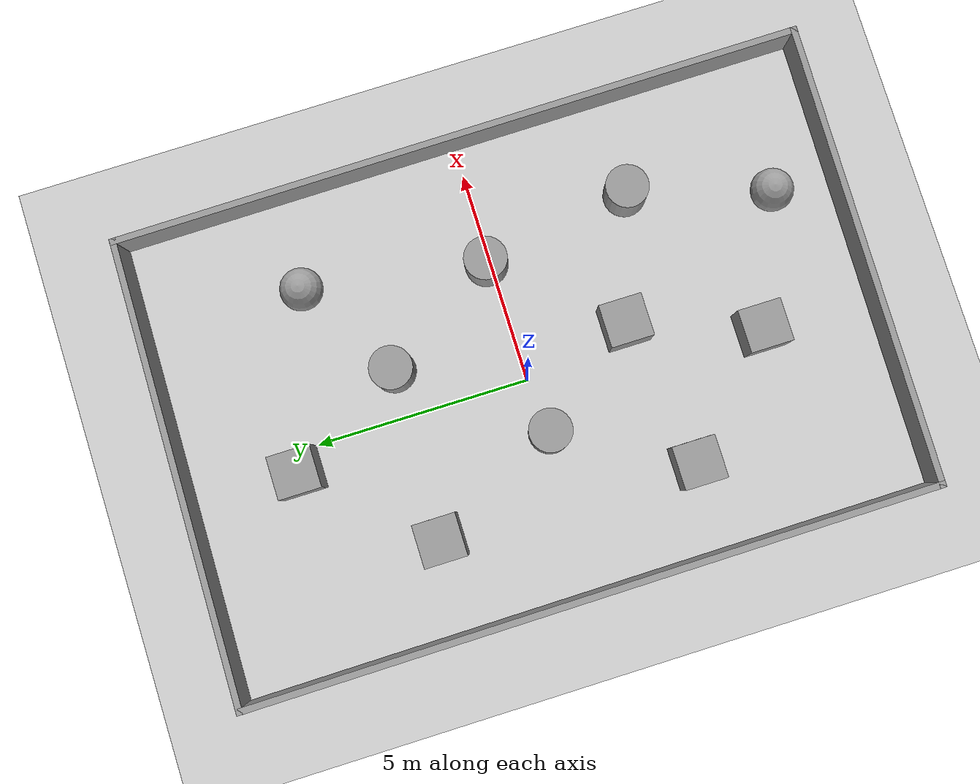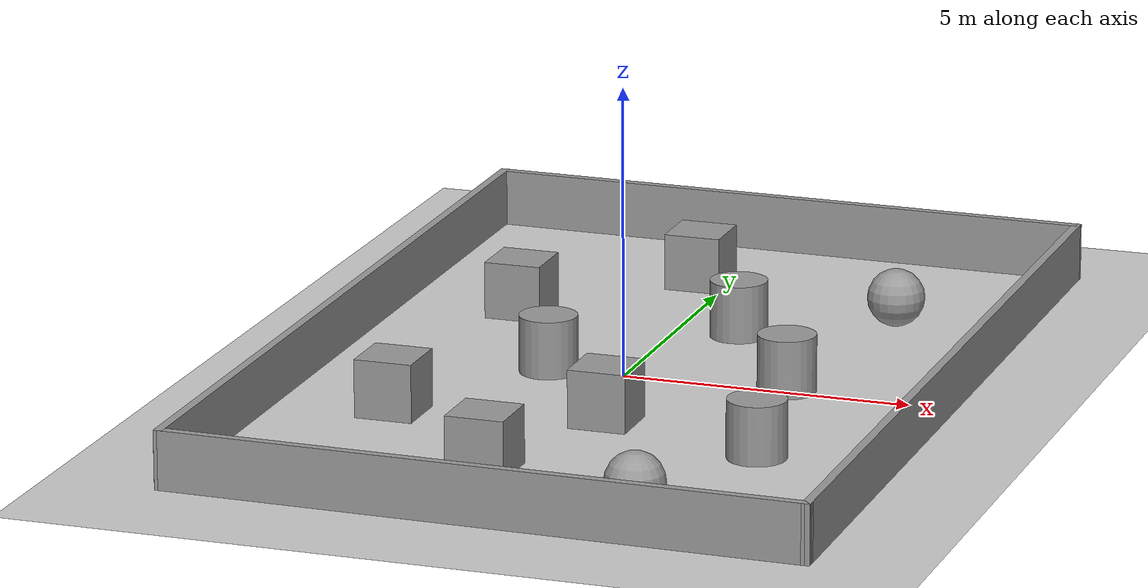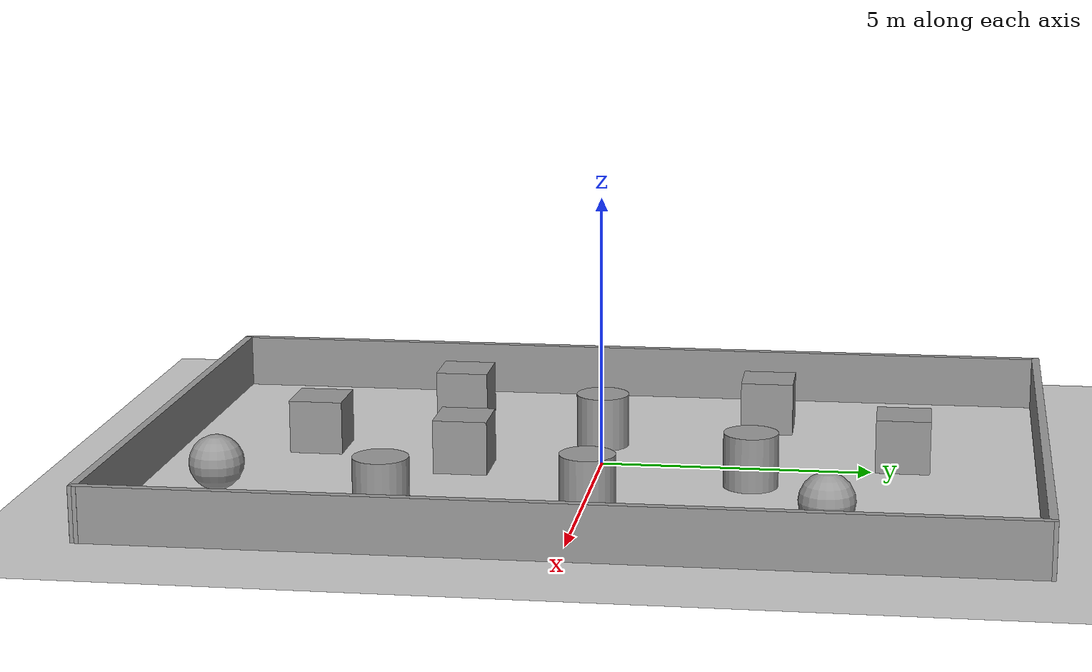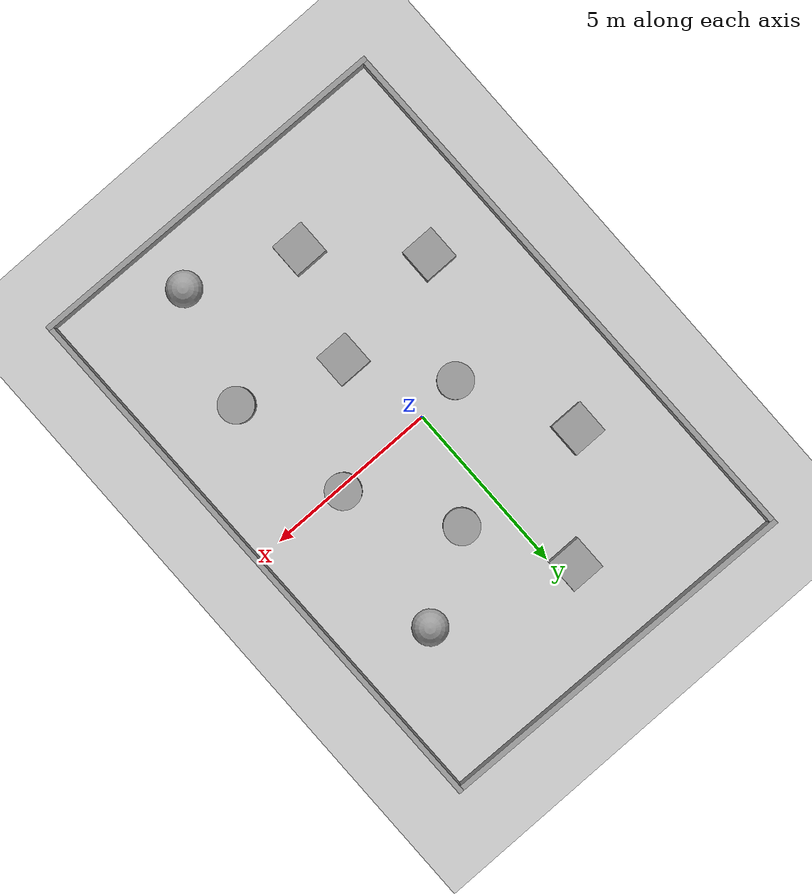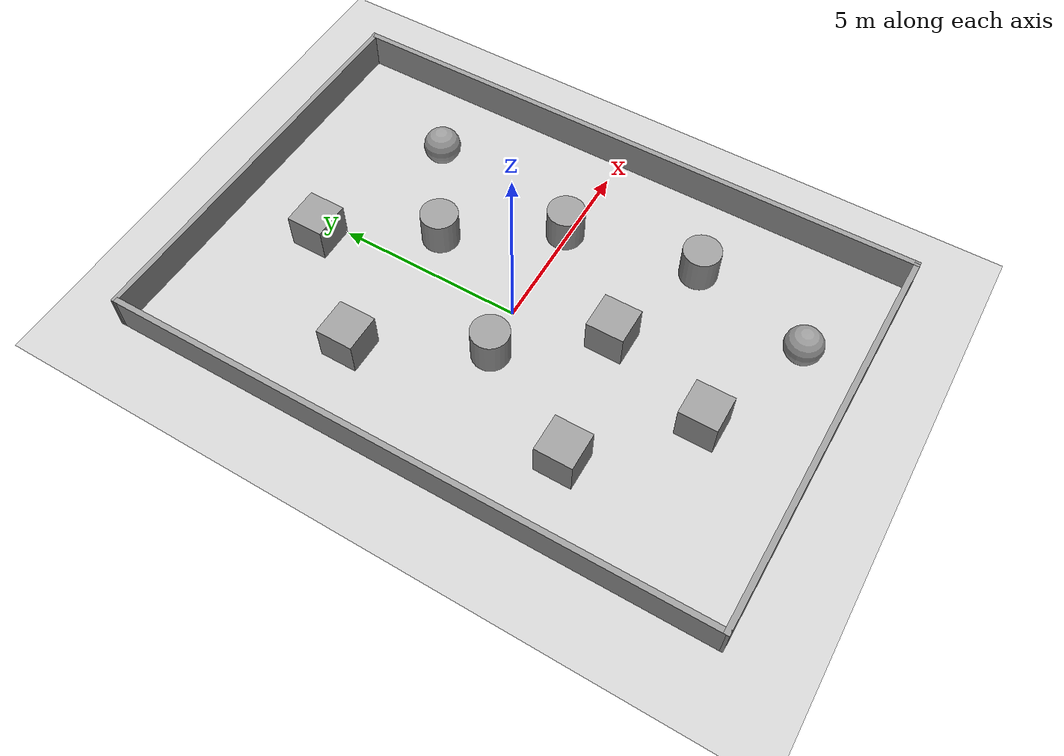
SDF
<sdf version="1.7">
 <world name="default">
  <light name="sun" type="directional">
   <pose>0 0 10 0 -0 0</pose>
   <diffuse>0.8 0.8 0.8 1</diffuse>
   <specular>0.2 0.2 0.2 1</specular>
   <attenuation>
    <range>1000</range>
    <constant>0.9</constant>
    <linear>0.01</linear>
    <quadratic>0.001</quadratic>
   </attenuation>
   <direction>-0.5 0.1 -0.9</direction>
   <spot><inner_angle>0</inner_angle><outer_angle>0</outer_angle><falloff>0</falloff></spot>
  </light>
  <model name="ground_plane">
   <static>1</static>
   <link name="link">
    <collision name="collision">
     <geometry><plane><normal>0 0 1</normal><size>100 100</size></plane></geometry>
     <surface>
      <contact><collide_bitmask>65535</collide_bitmask></contact>
      <friction><ode><mu>100</mu><mu2>50</mu2></ode></friction>
     </surface>
    </collision>
    <visual name="visual">
     <cast_shadows>0</cast_shadows>
     <geometry><plane><normal>0 0 1</normal><size>100 100</size></plane></geometry>
     <material>
      <script><uri>file://media/materials/scripts/gazebo.material</uri><name>Gazebo/Grey</name></script>
     </material>
    </visual>
   </link>
  </model>
  <gravity>0 0 -9.8</gravity>
  <magnetic_field>6e-06 2.3e-05 -4.2e-05</magnetic_field>
  <atmosphere type="adiabatic"/>
  <physics type="ode">
   <max_step_size>0.001</max_step_size>
   <real_time_factor>1</real_time_factor>
   <real_time_update_rate>1000</real_time_update_rate>
  </physics>
  <scene><ambient>0.4 0.4 0.4 1</ambient><background>0.7 0.7 0.7 1</background><shadows>1</shadows></scene>
  <spherical_coordinates>
   <surface_model>EARTH_WGS84</surface_model>
   <latitude_deg>0</latitude_deg>
   <longitude_deg>0</longitude_deg>
   <elevation>0</elevation>
   <heading_deg>0</heading_deg>
  </spherical_coordinates>
  <model name="wall_boundary">
   <pose>0.337668 -0.02169 0 0 -0 0</pose>
   <link name="Wall_21">
    <collision name="Wall_21_Collision">
     <geometry><box><size>10.9434 0.15 1</size></box></geometry>
     <pose>0 0 0.5 0 -0 0</pose>
    </collision>
    <visual name="Wall_21_Visual">
     <pose>0 0 0.5 0 -0 0</pose>
     <geometry><box><size>10.9434 0.15 1</size></box></geometry>
     <material>
      <script><uri>file://media/materials/scripts/gazebo.material</uri><name>Gazebo/Grey</name></script>
      <ambient>1 1 1 1</ambient>
     </material>
     <meta><layer>0</layer></meta>
    </visual>
    <pose>0.040955 -8.088 0 0 -0 -0.015103</pose>
   </link>
   <link name="Wall_22">
    <collision name="Wall_22_Collision">
     <geometry><box><size>16.3256 0.15 1</size></box></geometry>
     <pose>0 0 0.5 0 -0 0</pose>
    </collision>
    <visual name="Wall_22_Visual">
     <pose>0 0 0.5 0 -0 0</pose>
     <geometry><box><size>16.3256 0.15 1</size></box></geometry>
     <material>
      <script><uri>file://media/materials/scripts/gazebo.material</uri><name>Gazebo/Grey</name></script>
      <ambient>1 1 1 1</ambient>
     </material>
     <meta><layer>0</layer></meta>
    </visual>
    <pose>5.39595 -0.0815 0 0 -0 1.57587</pose>
   </link>
   <link name="Wall_23">
    <collision name="Wall_23_Collision">
     <geometry><box><size>10.9432 0.15 1</size></box></geometry>
     <pose>0 0 0.5 0 -0 0</pose>
    </collision>
    <visual name="Wall_23_Visual">
     <pose>0 0 0.5 0 -0 0</pose>
     <geometry><box><size>10.9432 0.15 1</size></box></geometry>
     <material>
      <script><uri>file://media/materials/scripts/gazebo.material</uri><name>Gazebo/Grey</name></script>
      <ambient>1 1 1 1</ambient>
     </material>
     <meta><layer>0</layer></meta>
    </visual>
    <pose>-0.041045 8.088 0 0 -0 3.12649</pose>
   </link>
   <link name="Wall_24">
    <collision name="Wall_24_Collision">
     <geometry><box><size>16.3256 0.15 1</size></box></geometry>
     <pose>0 0 0.5 0 -0 0</pose>
    </collision>
    <visual name="Wall_24_Visual">
     <pose>0 0 0.5 0 -0 0</pose>
     <geometry><box><size>16.3256 0.15 1</size></box></geometry>
     <material>
      <script><uri>file://media/materials/scripts/gazebo.material</uri><name>Gazebo/Grey</name></script>
      <ambient>1 1 1 1</ambient>
     </material>
     <meta><layer>0</layer></meta>
    </visual>
    <pose>-5.39604 0.0815 0 0 -0 -1.56573</pose>
   </link>
   <static>1</static>
  </model>
  <model name="unit_sphere">
   <pose>3.48397 4.30104 0.5 0 -0 0</pose>
   <link name="link">
    <inertial>
     <mass>1</mass>
     <inertia><ixx>0.1</ixx><ixy>0</ixy><ixz>0</ixz><iyy>0.1</iyy><iyz>0</iyz><izz>0.1</izz></inertia>
    </inertial>
    <collision name="collision"><geometry><sphere><radius>0.5</radius></sphere></geometry></collision>
    <visual name="visual">
     <geometry><sphere><radius>0.5</radius></sphere></geometry>
     <material>
      <script><name>Gazebo/Grey</name><uri>file://media/materials/scripts/gazebo.material</uri></script>
     </material>
    </visual>
   </link>
  </model>
  <model name="unit_cylinder">
   <pose>-1.29132 -0.136887 0.499994 -3e-06 -2e-06 0</pose>
   <link name="link">
    <inertial>
     <mass>1</mass>
     <inertia><ixx>0.145833</ixx><ixy>0</ixy><ixz>0</ixz><iyy>0.145833</iyy><iyz>0</iyz><izz>0.125</izz></inertia>
    </inertial>
    <collision name="collision">
     <geometry><cylinder><radius>0.5</radius><length>1</length></cylinder></geometry>
    </collision>
    <visual name="visual">
     <geometry><cylinder><radius>0.5</radius><length>1</length></cylinder></geometry>
     <material>
      <script><name>Gazebo/Grey</name><uri>file://media/materials/scripts/gazebo.material</uri></script>
     </material>
    </visual>
   </link>
  </model>
  <model name="unit_box">
   <pose>0.549153 -2.49082 0.499995 1e-05 -0 0</pose>
   <link name="link">
    <inertial>
     <mass>1</mass>
     <inertia>
      <ixx>0.166667</ixx>
      <ixy>0</ixy>
      <ixz>0</ixz>
      <iyy>0.166667</iyy>
      <iyz>0</iyz>
      <izz>0.166667</izz>
     </inertia>
    </inertial>
    <collision name="collision"><geometry><box><size>1 1 1</size></box></geometry></collision>
    <visual name="visual">
     <geometry><box><size>1 1 1</size></box></geometry>
     <material>
      <script><name>Gazebo/Grey</name><uri>file://media/materials/scripts/gazebo.material</uri></script>
     </material>
    </visual>
   </link>
  </model>
  <model name="unit_box_0">
   <pose>-2.87576 2.92318 0.499995 -1e-05 -0 -0</pose>
   <link name="link">
    <inertial>
     <mass>1</mass>
     <inertia>
      <ixx>0.166667</ixx>
      <ixy>0</ixy>
      <ixz>0</ixz>
      <iyy>0.166667</iyy>
      <iyz>0</iyz>
      <izz>0.166667</izz>
     </inertia>
    </inertial>
    <collision name="collision"><geometry><box><size>1 1 1</size></box></geometry></collision>
    <visual name="visual">
     <geometry><box><size>1 1 1</size></box></geometry>
     <material>
      <script><name>Gazebo/Grey</name><uri>file://media/materials/scripts/gazebo.material</uri></script>
     </material>
    </visual>
   </link>
  </model>
  <model name="unit_box_1">
   <pose>-0.480335 5.56078 0.499995 0 1e-05 0</pose>
   <link name="link">
    <inertial>
     <mass>1</mass>
     <inertia>
      <ixx>0.166667</ixx>
      <ixy>0</ixy>
      <ixz>0</ixz>
      <iyy>0.166667</iyy>
      <iyz>0</iyz>
      <izz>0.166667</izz>
     </inertia>
    </inertial>
    <collision name="collision"><geometry><box><size>1 1 1</size></box></geometry></collision>
    <visual name="visual">
     <geometry><box><size>1 1 1</size></box></geometry>
     <material>
      <script><name>Gazebo/Grey</name><uri>file://media/materials/scripts/gazebo.material</uri></script>
     </material>
    </visual>
   </link>
  </model>
  <model name="unit_box_2">
   <pose>-0.48999 -5.42924 0.499995 0 1e-05 0</pose>
   <link name="link">
    <inertial>
     <mass>1</mass>
     <inertia>
      <ixx>0.166667</ixx>
      <ixy>0</ixy>
      <ixz>0</ixz>
      <iyy>0.166667</iyy>
      <iyz>0</iyz>
      <izz>0.166667</izz>
     </inertia>
    </inertial>
    <collision name="collision"><geometry><box><size>1 1 1</size></box></geometry></collision>
    <visual name="visual">
     <geometry><box><size>1 1 1</size></box></geometry>
     <material>
      <script><name>Gazebo/Grey</name><uri>file://media/materials/scripts/gazebo.material</uri></script>
     </material>
    </visual>
   </link>
  </model>
  <model name="unit_cylinder_0">
   <pose>1.10701 2.84537 0.499998 3e-06 -3e-06 0</pose>
   <link name="link">
    <inertial>
     <mass>1</mass>
     <inertia><ixx>0.145833</ixx><ixy>0</ixy><ixz>0</ixz><iyy>0.145833</iyy><iyz>0</iyz><izz>0.125</izz></inertia>
    </inertial>
    <collision name="collision">
     <geometry><cylinder><radius>0.5</radius><length>1</length></cylinder></geometry>
    </collision>
    <visual name="visual">
     <geometry><cylinder><radius>0.5</radius><length>1</length></cylinder></geometry>
     <material>
      <script><name>Gazebo/Grey</name><uri>file://media/materials/scripts/gazebo.material</uri></script>
     </material>
    </visual>
   </link>
  </model>
  <model name="unit_cylinder_1">
   <pose>3.45103 -3.44624 0.499993 -3e-06 -4e-06 -0</pose>
   <link name="link">
    <inertial>
     <mass>1</mass>
     <inertia><ixx>0.145833</ixx><ixy>0</ixy><ixz>0</ixz><iyy>0.145833</iyy><iyz>0</iyz><izz>0.125</izz></inertia>
    </inertial>
    <collision name="collision">
     <geometry><cylinder><radius>0.5</radius><length>1</length></cylinder></geometry>
    </collision>
    <visual name="visual">
     <geometry><cylinder><radius>0.5</radius><length>1</length></cylinder></geometry>
     <material>
      <script><name>Gazebo/Grey</name><uri>file://media/materials/scripts/gazebo.material</uri></script>
     </material>
    </visual>
   </link>
  </model>
  <model name="unit_cylinder_2">
   <pose>2.83714 0.099756 0.499992 -3e-06 4e-06 0</pose>
   <link name="link">
    <inertial>
     <mass>1</mass>
     <inertia><ixx>0.145833</ixx><ixy>0</ixy><ixz>0</ixz><iyy>0.145833</iyy><iyz>0</iyz><izz>0.125</izz></inertia>
    </inertial>
    <collision name="collision">
     <geometry><cylinder><radius>0.5</radius><length>1</length></cylinder></geometry>
    </collision>
    <visual name="visual">
     <geometry><cylinder><radius>0.5</radius><length>1</length></cylinder></geometry>
     <material>
      <script><name>Gazebo/Grey</name><uri>file://media/materials/scripts/gazebo.material</uri></script>
     </material>
    </visual>
   </link>
  </model>
  <model name="unit_box_3">
   <pose>-2.95528 -3.0773 0.499995 -1e-05 -0 -0</pose>
   <link name="link">
    <inertial>
     <mass>1</mass>
     <inertia>
      <ixx>0.166667</ixx>
      <ixy>0</ixy>
      <ixz>0</ixz>
      <iyy>0.166667</iyy>
      <iyz>0</iyz>
      <izz>0.166667</izz>
     </inertia>
    </inertial>
    <collision name="collision"><geometry><box><size>1 1 1</size></box></geometry></collision>
    <visual name="visual">
     <geometry><box><size>1 1 1</size></box></geometry>
     <material>
      <script><name>Gazebo/Grey</name><uri>file://media/materials/scripts/gazebo.material</uri></script>
     </material>
    </visual>
   </link>
  </model>
  <model name="unit_sphere_0">
   <pose>2.47412 -6.65822 0.5 0 -0 0</pose>
   <link name="link">
    <inertial>
     <mass>1</mass>
     <inertia><ixx>0.1</ixx><ixy>0</ixy><ixz>0</ixz><iyy>0.1</iyy><iyz>0</iyz><izz>0.1</izz></inertia>
    </inertial>
    <collision name="collision"><geometry><sphere><radius>0.5</radius></sphere></geometry></collision>
    <visual name="visual">
     <geometry><sphere><radius>0.5</radius></sphere></geometry>
     <material>
      <script><name>Gazebo/Grey</name><uri>file://media/materials/scripts/gazebo.material</uri></script>
     </material>
    </visual>
   </link>
  </model>
 </world>
</sdf>
